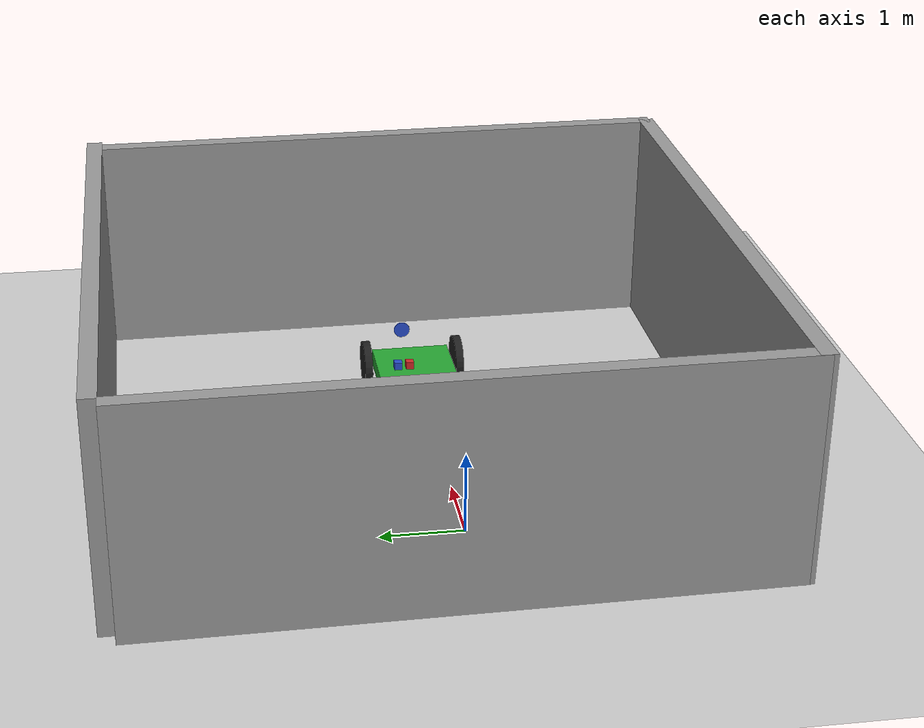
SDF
<sdf version="1.6">
 <world name="default">
  <light name="sun" type="directional">
   <pose>0 0 15 0 -0 0</pose>
   <diffuse>1 1 1 1</diffuse>
   <specular>0.1 0.1 0.1 1</specular>
   <attenuation>
    <range>1000</range>
    <constant>0.9</constant>
    <linear>0.01</linear>
    <quadratic>0.001</quadratic>
   </attenuation>
   <direction>-0.5 0.5 -1</direction>
  </light>
  <model name="ground_plane">
   <static>1</static>
   <link name="link">
    <collision name="collision">
     <geometry><plane><normal>0 0 1</normal><size>100 100</size></plane></geometry>
     <surface><friction><ode><mu>100</mu><mu2>50</mu2></ode></friction></surface>
    </collision>
    <visual name="visual">
     <transparency>1</transparency>
     <cast_shadows>0</cast_shadows>
     <geometry><plane><normal>0 0 1</normal><size>100 100</size></plane></geometry>
     <material>
      <script><uri>file://media/materials/scripts/gazebo.material</uri><name>Gazebo/Grey</name></script>
     </material>
    </visual>
   </link>
  </model>
  <gravity>0 0 -9.8</gravity>
  <magnetic_field>6e-06 2.3e-05 -4.2e-05</magnetic_field>
  <atmosphere type="adiabatic"/>
  <physics name="default_physics" default="0" type="ode">
   <max_step_size>0.001</max_step_size>
   <real_time_factor>1</real_time_factor>
   <real_time_update_rate>1000</real_time_update_rate>
  </physics>
  <scene><ambient>0.4 0.4 0.4 1</ambient><background>0.7 0.7 0.7 1</background><shadows>1</shadows></scene>
  <spherical_coordinates>
   <surface_model>EARTH_WGS84</surface_model>
   <latitude_deg>0</latitude_deg>
   <longitude_deg>0</longitude_deg>
   <elevation>0</elevation>
   <heading_deg>0</heading_deg>
  </spherical_coordinates>
  <model name="grey_wall">
   <static>1</static>
   <link name="link">
    <pose>0 0 1.4 0 -0 0</pose>
    <collision name="collision"><geometry><box><size>7.5 0.2 2.8</size></box></geometry></collision>
    <visual name="visual">
     <cast_shadows>0</cast_shadows>
     <geometry><box><size>7.5 0.2 2.8</size></box></geometry>
     <material>
      <script>
       <uri>model://grey_wall/materials/scripts</uri>
       <uri>model://grey_wall/materials/textures</uri>
       <name>vrc/grey_wall</name>
      </script>
     </material>
    </visual>
   </link>
   <pose>2.11896 -3.49387 0 0 -0 0</pose>
  </model>
  <model name="grey_wall_clone">
   <static>1</static>
   <link name="link">
    <pose>0 0 1.4 0 -0 0</pose>
    <collision name="collision"><geometry><box><size>7.5 0.2 2.8</size></box></geometry></collision>
    <visual name="visual">
     <cast_shadows>0</cast_shadows>
     <geometry><box><size>7.5 0.2 2.8</size></box></geometry>
     <material>
      <script>
       <uri>model://grey_wall/materials/scripts</uri>
       <uri>model://grey_wall/materials/textures</uri>
       <name>vrc/grey_wall</name>
      </script>
     </material>
    </visual>
   </link>
   <pose>2.21693 4.0552 0 0 -0 0</pose>
  </model>
  <model name="grey_wall_clone_0">
   <static>1</static>
   <link name="link">
    <pose>0 0 1.4 0 -0 0</pose>
    <collision name="collision"><geometry><box><size>7.5 0.2 2.8</size></box></geometry></collision>
    <visual name="visual">
     <cast_shadows>0</cast_shadows>
     <geometry><box><size>7.5 0.2 2.8</size></box></geometry>
     <material>
      <script>
       <uri>model://grey_wall/materials/scripts</uri>
       <uri>model://grey_wall/materials/textures</uri>
       <name>vrc/grey_wall</name>
      </script>
     </material>
    </visual>
   </link>
   <pose>5.81483 0.215548 0 0 -0 1.57971</pose>
  </model>
  <model name="grey_wall_clone_0_clone">
   <static>1</static>
   <link name="link">
    <pose>0 0 1.4 0 -0 0</pose>
    <collision name="collision"><geometry><box><size>7.5 0.2 2.8</size></box></geometry></collision>
    <visual name="visual">
     <cast_shadows>0</cast_shadows>
     <geometry><box><size>7.5 0.2 2.8</size></box></geometry>
     <material>
      <script>
       <uri>model://grey_wall/materials/scripts</uri>
       <uri>model://grey_wall/materials/textures</uri>
       <name>vrc/grey_wall</name>
      </script>
     </material>
    </visual>
   </link>
   <pose>-1.56916 0.214192 0 0 -0 1.57971</pose>
  </model>
  <model name="bookshelf">
   <static>1</static>
   <link name="link">
    <inertial><mass>1</mass></inertial>
    <collision name="back">
     <pose>0 0.005 0.6 0 -0 0</pose>
     <geometry><box><size>0.9 0.01 1.2</size></box></geometry>
    </collision>
    <visual name="visual1">
     <pose>0 0.005 0.6 0 -0 0</pose>
     <geometry><box><size>0.9 0.01 1.2</size></box></geometry>
     <material>
      <script><uri>file://media/materials/scripts/gazebo.material</uri><name>Gazebo/Wood</name></script>
     </material>
    </visual>
    <collision name="left_side">
     <pose>0.45 -0.195 0.6 0 -0 0</pose>
     <geometry><box><size>0.02 0.4 1.2</size></box></geometry>
    </collision>
    <visual name="visual2">
     <pose>0.45 -0.195 0.6 0 -0 0</pose>
     <geometry><box><size>0.02 0.4 1.2</size></box></geometry>
     <material>
      <script><uri>file://media/materials/scripts/gazebo.material</uri><name>Gazebo/Wood</name></script>
     </material>
    </visual>
    <collision name="right_side">
     <pose>-0.45 -0.195 0.6 0 -0 0</pose>
     <geometry><box><size>0.02 0.4 1.2</size></box></geometry>
    </collision>
    <visual name="visual3">
     <pose>-0.45 -0.195 0.6 0 -0 0</pose>
     <geometry><box><size>0.02 0.4 1.2</size></box></geometry>
     <material>
      <script><uri>file://media/materials/scripts/gazebo.material</uri><name>Gazebo/Wood</name></script>
     </material>
    </visual>
    <collision name="bottom">
     <pose>0 -0.195 0.03 0 -0 0</pose>
     <geometry><box><size>0.88 0.4 0.06</size></box></geometry>
    </collision>
    <visual name="visual4">
     <pose>0 -0.195 0.03 0 -0 0</pose>
     <geometry><box><size>0.88 0.4 0.06</size></box></geometry>
     <material>
      <script><uri>file://media/materials/scripts/gazebo.material</uri><name>Gazebo/Wood</name></script>
     </material>
    </visual>
    <collision name="top">
     <pose>0 -0.195 1.19 0 -0 0</pose>
     <geometry><box><size>0.88 0.4 0.02</size></box></geometry>
    </collision>
    <visual name="visual5">
     <pose>0 -0.195 1.19 0 -0 0</pose>
     <geometry><box><size>0.88 0.4 0.02</size></box></geometry>
     <material>
      <script><uri>file://media/materials/scripts/gazebo.material</uri><name>Gazebo/Wood</name></script>
     </material>
    </visual>
    <collision name="low_shelf">
     <pose>0 -0.195 0.43 0 -0 0</pose>
     <geometry><box><size>0.88 0.4 0.02</size></box></geometry>
    </collision>
    <visual name="visual6">
     <pose>0 -0.195 0.43 0 -0 0</pose>
     <geometry><box><size>0.88 0.4 0.02</size></box></geometry>
     <material>
      <script><uri>file://media/materials/scripts/gazebo.material</uri><name>Gazebo/Wood</name></script>
     </material>
    </visual>
    <collision name="high_shelf">
     <pose>0 -0.195 0.8 0 -0 0</pose>
     <geometry><box><size>0.88 0.4 0.02</size></box></geometry>
    </collision>
    <visual name="visual7">
     <pose>0 -0.195 0.8 0 -0 0</pose>
     <geometry><box><size>0.88 0.4 0.02</size></box></geometry>
     <material>
      <script><uri>file://media/materials/scripts/gazebo.material</uri><name>Gazebo/Wood</name></script>
     </material>
    </visual>
   </link>
   <pose>-0.952159 3.93559 0 0 -0 0</pose>
  </model>
  <model name="car">
   <link name="chassis">
    <pose>0 0 0.3 0 -0 0</pose>
    <collision name="collision"><geometry><box><size>2 1 0.2</size></box></geometry></collision>
    <visual name="visual">
     <geometry><box><size>2 1 0.2</size></box></geometry>
     <material>
      <script><uri>file://media/materials/scripts/gazebo.material</uri><name>Gazebo/Green</name></script>
     </material>
    </visual>
    <inertial>
     <inertia><ixx>1</ixx><ixy>0</ixy><ixz>0</ixz><iyy>1</iyy><iyz>0</iyz><izz>1</izz></inertia>
     <mass>1</mass>
    </inertial>
   </link>
   <link name="front_left_wheel">
    <pose>0.8 0.6 0.3 -0 1.5707 1.5707</pose>
    <collision name="collision">
     <geometry><cylinder><radius>0.3</radius><length>0.1</length></cylinder></geometry>
    </collision>
    <visual name="visual">
     <geometry><cylinder><radius>0.3</radius><length>0.1</length></cylinder></geometry>
     <material>
      <script><uri>file://media/materials/scripts/gazebo.material</uri><name>Gazebo/Black</name></script>
     </material>
    </visual>
    <inertial>
     <inertia><ixx>1</ixx><ixy>0</ixy><ixz>0</ixz><iyy>1</iyy><iyz>0</iyz><izz>1</izz></inertia>
     <mass>1</mass>
    </inertial>
   </link>
   <link name="front_right_wheel">
    <pose>0.8 -0.6 0.3 -0 1.5707 1.5707</pose>
    <collision name="collision">
     <geometry><cylinder><radius>0.3</radius><length>0.1</length></cylinder></geometry>
    </collision>
    <visual name="visual">
     <geometry><cylinder><radius>0.3</radius><length>0.1</length></cylinder></geometry>
     <material>
      <script><uri>file://media/materials/scripts/gazebo.material</uri><name>Gazebo/Black</name></script>
     </material>
    </visual>
    <inertial>
     <inertia><ixx>1</ixx><ixy>0</ixy><ixz>0</ixz><iyy>1</iyy><iyz>0</iyz><izz>1</izz></inertia>
     <mass>1</mass>
    </inertial>
   </link>
   <link name="back_right_wheel">
    <pose>-0.8 -0.6 0.3 -0 1.5707 1.5707</pose>
    <collision name="collision">
     <geometry><cylinder><radius>0.3</radius><length>0.1</length></cylinder></geometry>
    </collision>
    <visual name="visual">
     <geometry><cylinder><radius>0.3</radius><length>0.1</length></cylinder></geometry>
     <material>
      <script><uri>file://media/materials/scripts/gazebo.material</uri><name>Gazebo/Black</name></script>
     </material>
    </visual>
    <inertial>
     <inertia><ixx>1</ixx><ixy>0</ixy><ixz>0</ixz><iyy>1</iyy><iyz>0</iyz><izz>1</izz></inertia>
     <mass>1</mass>
    </inertial>
   </link>
   <link name="back_left_wheel">
    <pose>-0.8 0.6 0.3 -0 1.5707 1.5707</pose>
    <collision name="collision">
     <geometry><cylinder><radius>0.3</radius><length>0.1</length></cylinder></geometry>
    </collision>
    <visual name="visual">
     <geometry><cylinder><radius>0.3</radius><length>0.1</length></cylinder></geometry>
     <material>
      <script><uri>file://media/materials/scripts/gazebo.material</uri><name>Gazebo/Black</name></script>
     </material>
    </visual>
    <inertial>
     <inertia><ixx>1</ixx><ixy>0</ixy><ixz>0</ixz><iyy>1</iyy><iyz>0</iyz><izz>1</izz></inertia>
     <mass>1</mass>
    </inertial>
   </link>
   <link name="gas_pedal">
    <pose>0.3 0.1 0.5 0 -0 0</pose>
    <collision name="collision"><geometry><box><size>0.1 0.1 0.1</size></box></geometry></collision>
    <visual name="visual">
     <geometry><box><size>0.1 0.1 0.1</size></box></geometry>
     <material>
      <script><uri>file://media/materials/scripts/gazebo.material</uri><name>Gazebo/Red</name></script>
     </material>
    </visual>
    <inertial>
     <inertia><ixx>1</ixx><ixy>0</ixy><ixz>0</ixz><iyy>1</iyy><iyz>0</iyz><izz>1</izz></inertia>
     <mass>1</mass>
    </inertial>
   </link>
   <link name="brake_pedal">
    <pose>0.3 0.25 0.5 0 -0 0</pose>
    <collision name="collision"><geometry><box><size>0.1 0.1 0.1</size></box></geometry></collision>
    <visual name="visual">
     <geometry><box><size>0.1 0.1 0.1</size></box></geometry>
     <material>
      <script><uri>file://media/materials/scripts/gazebo.material</uri><name>Gazebo/Blue</name></script>
     </material>
    </visual>
    <inertial>
     <inertia><ixx>1</ixx><ixy>0</ixy><ixz>0</ixz><iyy>1</iyy><iyz>0</iyz><izz>1</izz></inertia>
     <mass>1</mass>
    </inertial>
   </link>
   <link name="steering_wheel">
    <pose>0.3 0.2 1 0 1.5707 0</pose>
    <collision name="collision">
     <geometry><cylinder><radius>0.1</radius><length>0.01</length></cylinder></geometry>
    </collision>
    <visual name="visual">
     <geometry><cylinder><radius>0.1</radius><length>0.01</length></cylinder></geometry>
     <material>
      <script><uri>file://media/materials/scripts/gazebo.material</uri><name>Gazebo/Blue</name></script>
     </material>
    </visual>
    <inertial>
     <inertia><ixx>1</ixx><ixy>0</ixy><ixz>0</ixz><iyy>1</iyy><iyz>0</iyz><izz>1</izz></inertia>
     <mass>1</mass>
    </inertial>
   </link>
   <joint name="gas_joint" type="prismatic">
    <parent>chassis</parent>
    <child>gas_pedal</child>
    <axis>
     <xyz>1 0 0</xyz>
     <limit><lower>0</lower><upper>0.2</upper></limit>
     <use_parent_model_frame>1</use_parent_model_frame>
     <dynamics><spring_reference>0</spring_reference><spring_stiffness>0</spring_stiffness></dynamics>
    </axis>
   </joint>
   <joint name="brake_joint" type="prismatic">
    <parent>chassis</parent>
    <child>brake_pedal</child>
    <axis>
     <xyz>1 0 0</xyz>
     <limit><lower>0</lower><upper>0.2</upper></limit>
     <use_parent_model_frame>1</use_parent_model_frame>
     <dynamics><spring_reference>0</spring_reference><spring_stiffness>0</spring_stiffness></dynamics>
    </axis>
   </joint>
   <joint name="steering_joint" type="revolute">
    <parent>chassis</parent>
    <child>steering_wheel</child>
    <axis>
     <xyz>1 0 0</xyz>
     <limit><lower>-7.853</lower><upper>7.853</upper></limit>
     <use_parent_model_frame>1</use_parent_model_frame>
     <dynamics><spring_reference>0</spring_reference><spring_stiffness>0</spring_stiffness></dynamics>
    </axis>
   </joint>
   <joint name="front_left_joint" type="revolute2">
    <parent>chassis</parent>
    <child>front_left_wheel</child>
    <axis>
     <xyz>0 0 1</xyz>
     <limit><lower>2.76689e-05</lower><upper>2.76689e-05</upper></limit>
     <use_parent_model_frame>1</use_parent_model_frame>
     <dynamics><spring_reference>0</spring_reference><spring_stiffness>0</spring_stiffness></dynamics>
    </axis>
    <axis2>
     <xyz>0 1 0</xyz>
     <use_parent_model_frame>1</use_parent_model_frame>
     <dynamics><spring_reference>0</spring_reference><spring_stiffness>0</spring_stiffness></dynamics>
    </axis2>
    <physics><ode><limit><cfm>0</cfm><erp>0.9</erp></limit></ode></physics>
   </joint>
   <joint name="front_right_joint" type="revolute2">
    <parent>chassis</parent>
    <child>front_right_wheel</child>
    <axis>
     <xyz>0 0 1</xyz>
     <limit><lower>2.76689e-05</lower><upper>2.76689e-05</upper></limit>
     <use_parent_model_frame>1</use_parent_model_frame>
     <dynamics><spring_reference>0</spring_reference><spring_stiffness>0</spring_stiffness></dynamics>
    </axis>
    <axis2>
     <xyz>0 1 0</xyz>
     <use_parent_model_frame>1</use_parent_model_frame>
     <dynamics><spring_reference>0</spring_reference><spring_stiffness>0</spring_stiffness></dynamics>
    </axis2>
    <physics><ode><limit><cfm>0</cfm><erp>0.9</erp></limit></ode></physics>
   </joint>
   <joint name="back_right_joint" type="revolute2">
    <parent>chassis</parent>
    <child>back_right_wheel</child>
    <axis>
     <xyz>0 0 1</xyz>
     <limit><lower>0</lower><upper>0</upper></limit>
     <use_parent_model_frame>1</use_parent_model_frame>
     <dynamics><spring_reference>0</spring_reference><spring_stiffness>0</spring_stiffness></dynamics>
    </axis>
    <axis2>
     <xyz>0 1 0</xyz>
     <use_parent_model_frame>1</use_parent_model_frame>
     <dynamics><spring_reference>0</spring_reference><spring_stiffness>0</spring_stiffness></dynamics>
    </axis2>
    <physics><ode><limit><cfm>0</cfm><erp>0.9</erp></limit></ode></physics>
   </joint>
   <joint name="back_left_joint" type="revolute2">
    <parent>chassis</parent>
    <child>back_left_wheel</child>
    <axis>
     <xyz>0 0 1</xyz>
     <limit><lower>0</lower><upper>0</upper></limit>
     <use_parent_model_frame>1</use_parent_model_frame>
     <dynamics><spring_reference>0</spring_reference><spring_stiffness>0</spring_stiffness></dynamics>
    </axis>
    <axis2>
     <xyz>0 1 0</xyz>
     <use_parent_model_frame>1</use_parent_model_frame>
     <dynamics><spring_reference>0</spring_reference><spring_stiffness>0</spring_stiffness></dynamics>
    </axis2>
    <physics><ode><limit><cfm>0</cfm><erp>0.9</erp></limit></ode></physics>
   </joint>
   <plugin name="vehicle" filename="libVehiclePlugin.so">
    <front_left>front_left_joint</front_left>
    <front_right>front_right_joint</front_right>
    <back_left>back_left_joint</back_left>
    <back_right>back_right_joint</back_right>
    <gas>gas_joint</gas>
    <brake>brake_joint</brake>
    <steering>steering_joint</steering>
    <front_power>10</front_power>
    <rear_power>10</rear_power>
    <tire_angle_range>0.5</tire_angle_range>
    <max_speed>10</max_speed>
    <aero_load>0.1</aero_load>
   </plugin>
   <pose>3.05932 0.064923 -0.002616 -0.000273 0.000907 0.004825</pose>
  </model>
  <model name="cabinet">
   <static>1</static>
   <link name="cabinet_bottom_plate">
    <inertial>
     <pose>0 0 -1 0 -0 0</pose>
     <inertia><ixx>2.05</ixx><ixy>0</ixy><ixz>0</ixz><iyy>2.05</iyy><iyz>0</iyz><izz>2.05</izz></inertia>
     <mass>25</mass>
    </inertial>
    <collision name="cabinet_bottom_plate_geom">
     <pose>0 0 0.01 0 -0 0</pose>
     <geometry><box><size>0.45 0.45 0.02</size></box></geometry>
    </collision>
    <visual name="cabinet_bottom_plate_geom_visual">
     <pose>0 0 0.01 0 -0 0</pose>
     <geometry><box><size>0.45 0.45 0.02</size></box></geometry>
     <material>
      <script><uri>file://media/materials/scripts/gazebo.material</uri><name>Gazebo/Wood</name></script>
     </material>
    </visual>
    <collision name="cabinet_bottom_plate_geom_cabinet_back_plate">
     <pose>0.235 0 0.51 0 -0 0</pose>
     <geometry><box><size>0.02 0.45 1.02</size></box></geometry>
    </collision>
    <visual name="cabinet_bottom_plate_geom_cabinet_back_plate_visual">
     <pose>0.235 0 0.51 0 -0 0</pose>
     <geometry><box><size>0.02 0.45 1.02</size></box></geometry>
     <material>
      <script><uri>file://media/materials/scripts/gazebo.material</uri><name>Gazebo/Wood</name></script>
     </material>
    </visual>
    <collision name="cabinet_bottom_plate_geom_cabinet_left_plate">
     <pose>0 0.235 0.51 0 -0 0</pose>
     <geometry><box><size>0.45 0.02 1.02</size></box></geometry>
    </collision>
    <visual name="cabinet_bottom_plate_geom_cabinet_left_plate_visual">
     <pose>0 0.235 0.51 0 -0 0</pose>
     <geometry><box><size>0.45 0.02 1.02</size></box></geometry>
     <material>
      <script><uri>file://media/materials/scripts/gazebo.material</uri><name>Gazebo/Wood</name></script>
     </material>
    </visual>
    <collision name="cabinet_bottom_plate_geom_cabinet_middle_plate">
     <pose>0 0 0.51 0 -0 0</pose>
     <geometry><box><size>0.45 0.45 0.02</size></box></geometry>
    </collision>
    <visual name="cabinet_bottom_plate_geom_cabinet_middle_plate_visual">
     <pose>0 0 0.51 0 -0 0</pose>
     <geometry><box><size>0.45 0.45 0.02</size></box></geometry>
     <material>
      <script><uri>file://media/materials/scripts/gazebo.material</uri><name>Gazebo/Wood</name></script>
     </material>
    </visual>
    <collision name="cabinet_bottom_plate_geom_cabinet_right_plate">
     <pose>0 -0.235 0.51 0 -0 0</pose>
     <geometry><box><size>0.45 0.02 1.02</size></box></geometry>
    </collision>
    <visual name="cabinet_bottom_plate_geom_cabinet_right_plate_visual">
     <pose>0 -0.235 0.51 0 -0 0</pose>
     <geometry><box><size>0.45 0.02 1.02</size></box></geometry>
     <material>
      <script><uri>file://media/materials/scripts/gazebo.material</uri><name>Gazebo/Wood</name></script>
     </material>
    </visual>
    <collision name="cabinet_bottom_plate_geom_cabinet_top_plate">
     <pose>0 0 1.01 0 -0 0</pose>
     <geometry><box><size>0.45 0.45 0.02</size></box></geometry>
    </collision>
    <visual name="cabinet_bottom_plate_geom_cabinet_top_plate_visual">
     <pose>0 0 1.01 0 -0 0</pose>
     <geometry><box><size>0.45 0.45 0.02</size></box></geometry>
     <material>
      <script><uri>file://media/materials/scripts/gazebo.material</uri><name>Gazebo/Wood</name></script>
     </material>
    </visual>
   </link>
   <pose>-1.30748 1.52908 0 0 -0 0</pose>
  </model>
 </world>
</sdf>
